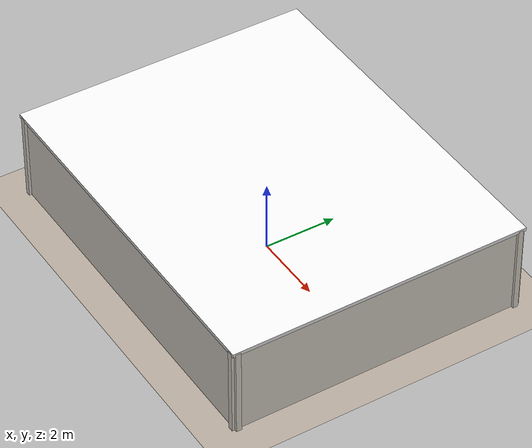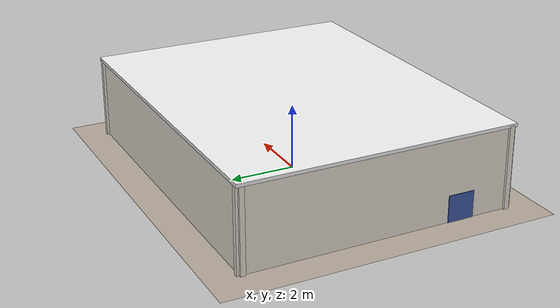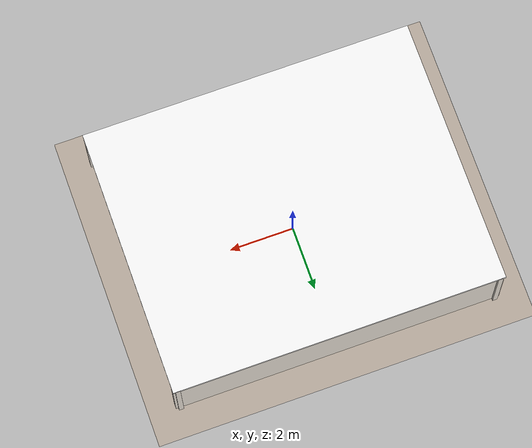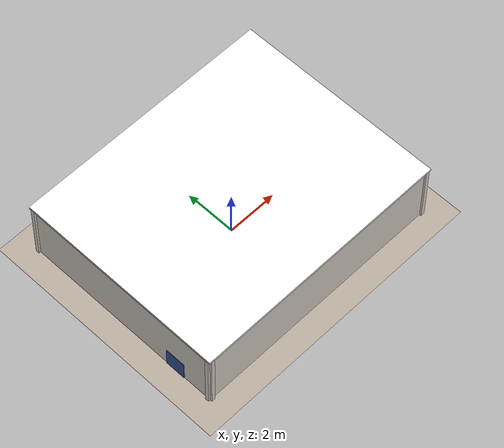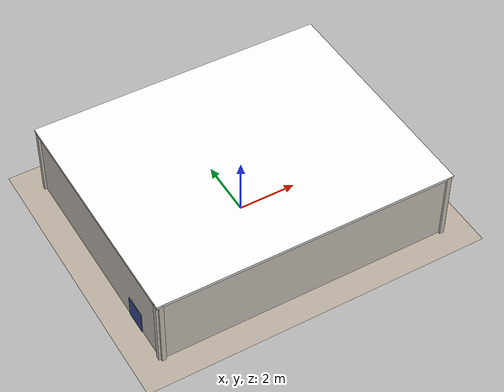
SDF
<?xml version="1.0"?>
<sdf version="1.9">
  <world name="house_indoor">
    <physics name="fast" type="ignored">
      <max_step_size>0.002</max_step_size>
      <real_time_factor>1.0</real_time_factor>
    </physics>

    <plugin filename="gz-sim-physics-system"
            name="gz::sim::systems::Physics"/>
    <plugin filename="gz-sim-scene-broadcaster-system"
            name="gz::sim::systems::SceneBroadcaster"/>
    <plugin filename="gz-sim-user-commands-system"
            name="gz::sim::systems::UserCommands"/>
    <plugin filename="gz-sim-sensors-system"
            name="gz::sim::systems::Sensors">
      <render_engine>ogre2</render_engine>
    </plugin>
    <plugin filename="gz-sim-imu-system"
            name="gz::sim::systems::Imu"/>

    <!-- Lighting -->
    <light type="directional" name="sun">
      <cast_shadows>true</cast_shadows>
      <pose>0 0 10 0 0 0</pose>
      <diffuse>0.8 0.8 0.8 1</diffuse>
      <specular>0.2 0.2 0.2 1</specular>
      <attenuation>
        <range>1000</range>
        <constant>0.9</constant>
        <linear>0.01</linear>
        <quadratic>0.001</quadratic>
      </attenuation>
      <direction>-0.5 0.1 -0.9</direction>
    </light>

    <scene>
      <ambient>0.5 0.5 0.5 1</ambient>
      <background>0.7 0.8 0.9 1</background>
      <shadows>true</shadows>
    </scene>

    <!-- FLOOR                                                    -->
    <model name="floor">
      <static>true</static>
      <link name="link">
        <collision name="collision">
          <geometry>
            <plane>
              <normal>0 0 1</normal>
              <size>14 12</size>
            </plane>
          </geometry>
        </collision>
        <visual name="visual">
          <geometry>
            <plane>
              <normal>0 0 1</normal>
              <size>14 12</size>
            </plane>
          </geometry>
          <material>
            <ambient>0.6 0.55 0.5 1</ambient>
            <diffuse>0.7 0.65 0.6 1</diffuse>
            <specular>0.1 0.1 0.1 1</specular>
          </material>
        </visual>
      </link>
    </model>

    <!-- Ceiling (drone stays below it) -->
    <model name="ceiling">
      <static>true</static>
      <pose>0 0 2.5 0 0 0</pose>
      <link name="link">
        <collision name="collision">
          <geometry>
            <box><size>10.3 8.3 0.1</size></box>
          </geometry>
        </collision>
        <visual name="visual">
          <geometry>
            <box><size>10.3 8.3 0.1</size></box>
          </geometry>
          <material>
            <ambient>0.9 0.9 0.9 1</ambient>
            <diffuse>0.95 0.95 0.95 1</diffuse>
          </material>
        </visual>
      </link>
    </model>

    <!-- WALLS: house 10m(x) x 8m(y), height 2.5m, thickness 0.15 -->
    <!-- Rooms:                                             -->
    <!--   Living  : x[-5,-1]  y[-4, 0]                          -->
    <!--   Bedroom : x[-5,-1]  y[ 0, 4]                          -->
    <!--   Kitchen : x[ 1, 5]  y[ 0, 4]                          -->
    <!--   Study   : x[ 1, 5]  y[-4, 0]                          -->
    <!--   Hall    : x[-1, 1]  y[-4, 4]  (corridor, door gaps)   -->
    <!-- Door gaps are 0.9m openings in interior walls.          -->

    <!-- Helper macro for wall boxes via include-style repetition -->
    <!-- Exterior: North wall (y=+4) -->
    <model name="wall_north">
      <static>true</static>
      <pose>0 4 1.25 0 0 0</pose>
      <link name="link">
        <collision name="c"><geometry><box><size>10.3 0.15 2.5</size></box></geometry></collision>
        <visual name="v">
          <geometry><box><size>10.3 0.15 2.5</size></box></geometry>
          <material><ambient>0.85 0.82 0.78 1</ambient><diffuse>0.9 0.87 0.83 1</diffuse></material>
        </visual>
      </link>
    </model>

    <!-- Exterior: South wall (y=-4) -->
    <model name="wall_south">
      <static>true</static>
      <pose>0 -4 1.25 0 0 0</pose>
      <link name="link">
        <collision name="c"><geometry><box><size>10.3 0.15 2.5</size></box></geometry></collision>
        <visual name="v">
          <geometry><box><size>10.3 0.15 2.5</size></box></geometry>
          <material><ambient>0.85 0.82 0.78 1</ambient><diffuse>0.9 0.87 0.83 1</diffuse></material>
        </visual>
      </link>
    </model>

    <!-- Exterior: West wall (x=-5) -->
    <model name="wall_west">
      <static>true</static>
      <pose>-5 0 1.25 0 0 0</pose>
      <link name="link">
        <collision name="c"><geometry><box><size>0.15 8.3 2.5</size></box></geometry></collision>
        <visual name="v">
          <geometry><box><size>0.15 8.3 2.5</size></box></geometry>
          <material><ambient>0.85 0.82 0.78 1</ambient><diffuse>0.9 0.87 0.83 1</diffuse></material>
        </visual>
      </link>
    </model>

    <!-- Exterior: East wall (x=+5) -->
    <model name="wall_east">
      <static>true</static>
      <pose>5 0 1.25 0 0 0</pose>
      <link name="link">
        <collision name="c"><geometry><box><size>0.15 8.3 2.5</size></box></geometry></collision>
        <visual name="v">
          <geometry><box><size>0.15 8.3 2.5</size></box></geometry>
          <material><ambient>0.85 0.82 0.78 1</ambient><diffuse>0.9 0.87 0.83 1</diffuse></material>
        </visual>
      </link>
    </model>

    <!-- Interior wall: x=-1 (Living|Hall west side) with door gap at y=[-0.45,+0.45] -->
    <model name="wall_x_neg1_south">
      <static>true</static>
      <pose>-1 -2.225 1.25 0 0 0</pose>
      <link name="link">
        <collision name="c"><geometry><box><size>0.15 3.55 2.5</size></box></geometry></collision>
        <visual name="v">
          <geometry><box><size>0.15 3.55 2.5</size></box></geometry>
          <material><ambient>0.82 0.8 0.76 1</ambient><diffuse>0.88 0.85 0.8 1</diffuse></material>
        </visual>
      </link>
    </model>
    <model name="wall_x_neg1_north">
      <static>true</static>
      <pose>-1 2.225 1.25 0 0 0</pose>
      <link name="link">
        <collision name="c"><geometry><box><size>0.15 3.55 2.5</size></box></geometry></collision>
        <visual name="v">
          <geometry><box><size>0.15 3.55 2.5</size></box></geometry>
          <material><ambient>0.82 0.8 0.76 1</ambient><diffuse>0.88 0.85 0.8 1</diffuse></material>
        </visual>
      </link>
    </model>

    <!-- Interior wall: x=+1 (Hall east side) with door gap at y=[-0.45,+0.45] -->
    <model name="wall_x_pos1_south">
      <static>true</static>
      <pose>1 -2.225 1.25 0 0 0</pose>
      <link name="link">
        <collision name="c"><geometry><box><size>0.15 3.55 2.5</size></box></geometry></collision>
        <visual name="v">
          <geometry><box><size>0.15 3.55 2.5</size></box></geometry>
          <material><ambient>0.82 0.8 0.76 1</ambient><diffuse>0.88 0.85 0.8 1</diffuse></material>
        </visual>
      </link>
    </model>
    <model name="wall_x_pos1_north">
      <static>true</static>
      <pose>1 2.225 1.25 0 0 0</pose>
      <link name="link">
        <collision name="c"><geometry><box><size>0.15 3.55 2.5</size></box></geometry></collision>
        <visual name="v">
          <geometry><box><size>0.15 3.55 2.5</size></box></geometry>
          <material><ambient>0.82 0.8 0.76 1</ambient><diffuse>0.88 0.85 0.8 1</diffuse></material>
        </visual>
      </link>
    </model>

    <!-- Interior wall: y=0 west side (Living|Bedroom) door gap x=[-3.45,-2.55] -->
    <model name="wall_y0_west_a">
      <static>true</static>
      <pose>-4.225 0 1.25 0 0 0</pose>
      <link name="link">
        <collision name="c"><geometry><box><size>1.55 0.15 2.5</size></box></geometry></collision>
        <visual name="v">
          <geometry><box><size>1.55 0.15 2.5</size></box></geometry>
          <material><ambient>0.82 0.8 0.76 1</ambient><diffuse>0.88 0.85 0.8 1</diffuse></material>
        </visual>
      </link>
    </model>
    <model name="wall_y0_west_b">
      <static>true</static>
      <pose>-1.775 0 1.25 0 0 0</pose>
      <link name="link">
        <collision name="c"><geometry><box><size>1.55 0.15 2.5</size></box></geometry></collision>
        <visual name="v">
          <geometry><box><size>1.55 0.15 2.5</size></box></geometry>
          <material><ambient>0.82 0.8 0.76 1</ambient><diffuse>0.88 0.85 0.8 1</diffuse></material>
        </visual>
      </link>
    </model>

    <!-- Interior wall: y=0 east side (Kitchen|Study) door gap x=[2.55,3.45] -->
    <model name="wall_y0_east_a">
      <static>true</static>
      <pose>1.775 0 1.25 0 0 0</pose>
      <link name="link">
        <collision name="c"><geometry><box><size>1.55 0.15 2.5</size></box></geometry></collision>
        <visual name="v">
          <geometry><box><size>1.55 0.15 2.5</size></box></geometry>
          <material><ambient>0.82 0.8 0.76 1</ambient><diffuse>0.88 0.85 0.8 1</diffuse></material>
        </visual>
      </link>
    </model>
    <model name="wall_y0_east_b">
      <static>true</static>
      <pose>4.225 0 1.25 0 0 0</pose>
      <link name="link">
        <collision name="c"><geometry><box><size>1.55 0.15 2.5</size></box></geometry></collision>
        <visual name="v">
          <geometry><box><size>1.55 0.15 2.5</size></box></geometry>
          <material><ambient>0.82 0.8 0.76 1</ambient><diffuse>0.88 0.85 0.8 1</diffuse></material>
        </visual>
      </link>
    </model>

    <!-- FURNITURE (static obstacles for lidar/planners)          -->

    <!-- Living room: sofa -->
    <model name="sofa">
      <static>true</static>
      <pose>-4.2 -2.5 0.4 0 0 0</pose>
      <link name="link">
        <collision name="c"><geometry><box><size>1.8 0.8 0.8</size></box></geometry></collision>
        <visual name="v">
          <geometry><box><size>1.8 0.8 0.8</size></box></geometry>
          <material><ambient>0.2 0.3 0.6 1</ambient><diffuse>0.25 0.35 0.65 1</diffuse></material>
        </visual>
      </link>
    </model>

    <!-- Living room: coffee table -->
    <model name="coffee_table">
      <static>true</static>
      <pose>-2.8 -2.3 0.225 0 0 0</pose>
      <link name="link">
        <collision name="c"><geometry><box><size>1.0 0.6 0.45</size></box></geometry></collision>
        <visual name="v">
          <geometry><box><size>1.0 0.6 0.45</size></box></geometry>
          <material><ambient>0.4 0.28 0.15 1</ambient><diffuse>0.45 0.32 0.18 1</diffuse></material>
        </visual>
      </link>
    </model>

    <!-- Bedroom: bed -->
    <model name="bed">
      <static>true</static>
      <pose>-3.8 2.6 0.3 0 0 0</pose>
      <link name="link">
        <collision name="c"><geometry><box><size>2.0 1.6 0.6</size></box></geometry></collision>
        <visual name="v">
          <geometry><box><size>2.0 1.6 0.6</size></box></geometry>
          <material><ambient>0.7 0.7 0.75 1</ambient><diffuse>0.75 0.75 0.8 1</diffuse></material>
        </visual>
      </link>
    </model>

    <!-- Bedroom: wardrobe -->
    <model name="wardrobe">
      <static>true</static>
      <pose>-1.5 3.5 1.0 0 0 0</pose>
      <link name="link">
        <collision name="c"><geometry><box><size>1.4 0.6 2.0</size></box></geometry></collision>
        <visual name="v">
          <geometry><box><size>1.4 0.6 2.0</size></box></geometry>
          <material><ambient>0.35 0.22 0.12 1</ambient><diffuse>0.4 0.26 0.15 1</diffuse></material>
        </visual>
      </link>
    </model>

    <!-- Kitchen: counter -->
    <model name="kitchen_counter">
      <static>true</static>
      <pose>4.4 2.5 0.45 0 0 0</pose>
      <link name="link">
        <collision name="c"><geometry><box><size>1.2 2.6 0.9</size></box></geometry></collision>
        <visual name="v">
          <geometry><box><size>1.2 2.6 0.9</size></box></geometry>
          <material><ambient>0.75 0.75 0.78 1</ambient><diffuse>0.8 0.8 0.83 1</diffuse></material>
        </visual>
      </link>
    </model>

    <!-- Kitchen: island -->
    <model name="kitchen_island">
      <static>true</static>
      <pose>2.3 2.0 0.45 0 0 0</pose>
      <link name="link">
        <collision name="c"><geometry><box><size>1.4 0.8 0.9</size></box></geometry></collision>
        <visual name="v">
          <geometry><box><size>1.4 0.8 0.9</size></box></geometry>
          <material><ambient>0.5 0.5 0.55 1</ambient><diffuse>0.55 0.55 0.6 1</diffuse></material>
        </visual>
      </link>
    </model>

    <!-- Study: desk -->
    <model name="desk">
      <static>true</static>
      <pose>3.5 -2.8 0.375 0 0 0</pose>
      <link name="link">
        <collision name="c"><geometry><box><size>1.6 0.8 0.75</size></box></geometry></collision>
        <visual name="v">
          <geometry><box><size>1.6 0.8 0.75</size></box></geometry>
          <material><ambient>0.45 0.32 0.18 1</ambient><diffuse>0.5 0.36 0.2 1</diffuse></material>
        </visual>
      </link>
    </model>

    <!-- Study: bookshelf -->
    <model name="bookshelf">
      <static>true</static>
      <pose>2.0 -3.6 0.9 0 0 0</pose>
      <link name="link">
        <collision name="c"><geometry><box><size>1.0 0.35 1.8</size></box></geometry></collision>
        <visual name="v">
          <geometry><box><size>1.0 0.35 1.8</size></box></geometry>
          <material><ambient>0.3 0.2 0.1 1</ambient><diffuse>0.35 0.24 0.12 1</diffuse></material>
        </visual>
      </link>
    </model>

    <!-- Hall: pillar (narrow obstacle) -->
    <model name="pillar">
      <static>true</static>
      <pose>0.0 -2.0 1.25 0 0 0</pose>
      <link name="link">
        <collision name="c"><geometry><cylinder><radius>0.2</radius><length>2.5</length></cylinder></geometry></collision>
        <visual name="v">
          <geometry><cylinder><radius>0.2</radius><length>2.5</length></cylinder></geometry>
          <material><ambient>0.6 0.6 0.6 1</ambient><diffuse>0.65 0.65 0.65 1</diffuse></material>
        </visual>
      </link>
    </model>

  </world>
</sdf>
